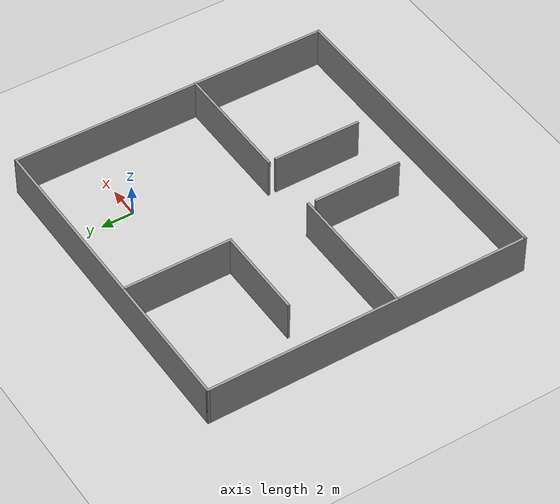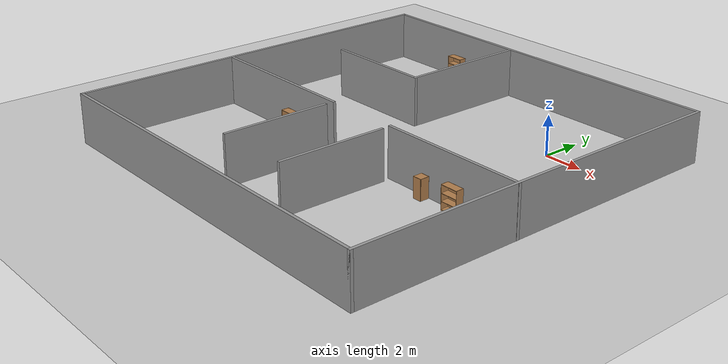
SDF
<sdf version="1.7">
 <world name="default">
  <light name="sun" type="directional">
   <pose>0 0 10 0 -0 0</pose>
   <diffuse>0.8 0.8 0.8 1</diffuse>
   <specular>0.2 0.2 0.2 1</specular>
   <attenuation>
    <range>1000</range>
    <constant>0.9</constant>
    <linear>0.01</linear>
    <quadratic>0.001</quadratic>
   </attenuation>
   <direction>-0.5 0.1 -0.9</direction>
   <spot><inner_angle>0</inner_angle><outer_angle>0</outer_angle><falloff>0</falloff></spot>
  </light>
  <model name="ground_plane">
   <static>1</static>
   <link name="link">
    <collision name="collision">
     <geometry><plane><normal>0 0 1</normal><size>100 100</size></plane></geometry>
     <surface><friction><ode><mu>100</mu><mu2>50</mu2></ode></friction></surface>
    </collision>
    <visual name="visual">
     <cast_shadows>0</cast_shadows>
     <geometry><plane><normal>0 0 1</normal><size>100 100</size></plane></geometry>
     <material>
      <script><uri>file://media/materials/scripts/gazebo.material</uri><name>Gazebo/Grey</name></script>
     </material>
    </visual>
   </link>
  </model>
  <gravity>0 0 -9.8</gravity>
  <magnetic_field>6e-06 2.3e-05 -4.2e-05</magnetic_field>
  <atmosphere type="adiabatic"/>
  <physics type="ode">
   <max_step_size>0.001</max_step_size>
   <real_time_factor>1</real_time_factor>
   <real_time_update_rate>1000</real_time_update_rate>
  </physics>
  <scene><ambient>0.4 0.4 0.4 1</ambient><background>0.7 0.7 0.7 1</background><shadows>1</shadows></scene>
  <audio><device>default</device></audio>
  <spherical_coordinates>
   <surface_model>EARTH_WGS84</surface_model>
   <latitude_deg>0</latitude_deg>
   <longitude_deg>0</longitude_deg>
   <elevation>0</elevation>
   <heading_deg>0</heading_deg>
  </spherical_coordinates>
  <model name="room">
   <pose>-5.10255 -5.46959 0 0 -0 0</pose>
   <link name="Wall_10">
    <collision name="Wall_10_Collision">
     <geometry><box><size>20 0.15 2.5</size></box></geometry>
     <pose>0 0 1.25 0 -0 0</pose>
    </collision>
    <visual name="Wall_10_Visual">
     <pose>0 0 1.25 0 -0 0</pose>
     <geometry><box><size>20 0.15 2.5</size></box></geometry>
     <material>
      <script><uri>file://media/materials/scripts/gazebo.material</uri><name>Gazebo/Grey</name></script>
      <ambient>1 1 1 1</ambient>
     </material>
     <meta><layer>0</layer></meta>
    </visual>
    <pose>-0.0061 9.925 0 0 -0 0</pose>
   </link>
   <link name="Wall_11">
    <collision name="Wall_11_Collision">
     <geometry><box><size>20 0.15 2.5</size></box></geometry>
     <pose>0 0 1.25 0 -0 0</pose>
    </collision>
    <visual name="Wall_11_Visual">
     <pose>0 0 1.25 0 -0 0</pose>
     <geometry><box><size>20 0.15 2.5</size></box></geometry>
     <material>
      <script><uri>file://media/materials/scripts/gazebo.material</uri><name>Gazebo/Grey</name></script>
      <ambient>1 1 1 1</ambient>
     </material>
     <meta><layer>0</layer></meta>
    </visual>
    <pose>9.9189 0 0 0 -0 -1.5708</pose>
   </link>
   <link name="Wall_13">
    <collision name="Wall_13_Collision">
     <geometry><box><size>20 0.15 2.5</size></box></geometry>
     <pose>0 0 1.25 0 -0 0</pose>
    </collision>
    <visual name="Wall_13_Visual">
     <pose>0 0 1.25 0 -0 0</pose>
     <geometry><box><size>20 0.15 2.5</size></box></geometry>
     <material>
      <script><uri>file://media/materials/scripts/gazebo.material</uri><name>Gazebo/Grey</name></script>
      <ambient>1 1 1 1</ambient>
     </material>
     <meta><layer>0</layer></meta>
    </visual>
    <pose>-9.9311 0 0 0 -0 -1.5708</pose>
   </link>
   <link name="Wall_14">
    <collision name="Wall_14_Collision">
     <geometry><box><size>20 0.15 2.5</size></box></geometry>
     <pose>0 0 1.25 0 -0 0</pose>
    </collision>
    <visual name="Wall_14_Visual">
     <pose>0 0 1.25 0 -0 0</pose>
     <geometry><box><size>20 0.15 2.5</size></box></geometry>
     <material>
      <script><uri>file://media/materials/scripts/gazebo.material</uri><name>Gazebo/Grey</name></script>
      <ambient>1 1 1 1</ambient>
     </material>
     <meta><layer>0</layer></meta>
    </visual>
    <pose>-0.0061 -9.925 0 0 -0 0</pose>
   </link>
   <link name="Wall_19">
    <collision name="Wall_19_Collision">
     <geometry><box><size>6.75 0.15 2.5</size></box></geometry>
     <pose>0 0 1.25 0 -0 0</pose>
    </collision>
    <visual name="Wall_19_Visual">
     <pose>0 0 1.25 0 -0 0</pose>
     <geometry><box><size>6.75 0.15 2.5</size></box></geometry>
     <material>
      <script><uri>file://media/materials/scripts/gazebo.material</uri><name>Gazebo/Grey</name></script>
      <ambient>1 1 1 1</ambient>
     </material>
     <meta><layer>0</layer></meta>
    </visual>
    <pose>-1.58567 6.61451 0 0 -0 -1.5708</pose>
   </link>
   <link name="Wall_20">
    <collision name="Wall_20_Collision">
     <geometry><box><size>5.75 0.15 2.5</size></box></geometry>
     <pose>0 0 1.25 0 -0 0</pose>
    </collision>
    <visual name="Wall_20_Visual">
     <pose>0 0 1.25 0 -0 0</pose>
     <geometry><box><size>5.75 0.15 2.5</size></box></geometry>
     <material>
      <script><uri>file://media/materials/scripts/gazebo.material</uri><name>Gazebo/Grey</name></script>
      <ambient>1 1 1 1</ambient>
     </material>
     <meta><layer>0</layer></meta>
    </visual>
    <pose>-4.38567 3.31451 0 0 -0 3.14159</pose>
   </link>
   <link name="Wall_23">
    <collision name="Wall_23_Collision">
     <geometry><box><size>8.5 0.15 2.5</size></box></geometry>
     <pose>0 0 1.25 0 -0 0</pose>
    </collision>
    <visual name="Wall_23_Visual">
     <pose>0 0 1.25 0 -0 0</pose>
     <geometry><box><size>8.5 0.15 2.5</size></box></geometry>
     <material>
      <script><uri>file://media/materials/scripts/gazebo.material</uri><name>Gazebo/Grey</name></script>
      <ambient>1 1 1 1</ambient>
     </material>
     <meta><layer>0</layer></meta>
    </visual>
    <pose>-5.7472 -1.67681 0 0 -0 -4.5e-05</pose>
   </link>
   <link name="Wall_25">
    <collision name="Wall_25_Collision">
     <geometry><box><size>5.5 0.15 2.5</size></box></geometry>
     <pose>0 0 1.25 0 -0 0</pose>
    </collision>
    <visual name="Wall_25_Visual">
     <pose>0 0 1.25 0 -0 0</pose>
     <geometry><box><size>5.5 0.15 2.5</size></box></geometry>
     <material>
      <script><uri>file://media/materials/scripts/gazebo.material</uri><name>Gazebo/Grey</name></script>
      <ambient>1 1 1 1</ambient>
     </material>
     <meta><layer>0</layer></meta>
    </visual>
    <pose>-1.5721 -4.852 0 0 -0 -1.5708</pose>
   </link>
   <link name="Wall_27">
    <collision name="Wall_27_Collision">
     <geometry><box><size>7.75 0.15 2.5</size></box></geometry>
     <pose>0 0 1.25 0 -0 0</pose>
    </collision>
    <visual name="Wall_27_Visual">
     <pose>0 0 1.25 0 -0 0</pose>
     <geometry><box><size>7.75 0.15 2.5</size></box></geometry>
     <material>
      <script><uri>file://media/materials/scripts/gazebo.material</uri><name>Gazebo/Grey</name></script>
      <ambient>1 1 1 1</ambient>
     </material>
     <meta><layer>0</layer></meta>
    </visual>
    <pose>6.1311 -1.61402 0 0 -0 3.14159</pose>
   </link>
   <link name="Wall_28">
    <collision name="Wall_28_Collision">
     <geometry><box><size>5.5 0.15 2.5</size></box></geometry>
     <pose>0 0 1.25 0 -0 0</pose>
    </collision>
    <visual name="Wall_28_Visual">
     <pose>0 0 1.25 0 -0 0</pose>
     <geometry><box><size>5.5 0.15 2.5</size></box></geometry>
     <material>
      <script><uri>file://media/materials/scripts/gazebo.material</uri><name>Gazebo/Grey</name></script>
      <ambient>1 1 1 1</ambient>
     </material>
     <meta><layer>0</layer></meta>
    </visual>
    <pose>2.3311 -4.78902 0 0 -0 -1.5708</pose>
   </link>
   <static>1</static>
  </model>
  <model name="cabinet">
   <static>1</static>
   <link name="cabinet_bottom_plate">
    <inertial>
     <pose>0 0 -1 0 -0 0</pose>
     <inertia><ixx>2.05</ixx><ixy>0</ixy><ixz>0</ixz><iyy>2.05</iyy><iyz>0</iyz><izz>2.05</izz></inertia>
     <mass>25</mass>
    </inertial>
    <collision name="cabinet_bottom_plate_geom">
     <pose>0 0 0.01 0 -0 0</pose>
     <geometry><box><size>0.45 0.45 0.02</size></box></geometry>
    </collision>
    <visual name="cabinet_bottom_plate_geom_visual">
     <pose>0 0 0.01 0 -0 0</pose>
     <geometry><box><size>0.45 0.45 0.02</size></box></geometry>
     <material>
      <script><uri>file://media/materials/scripts/gazebo.material</uri><name>Gazebo/Wood</name></script>
     </material>
    </visual>
    <collision name="cabinet_bottom_plate_geom_cabinet_back_plate">
     <pose>0.235 0 0.51 0 -0 0</pose>
     <geometry><box><size>0.02 0.45 1.02</size></box></geometry>
    </collision>
    <visual name="cabinet_bottom_plate_geom_cabinet_back_plate_visual">
     <pose>0.235 0 0.51 0 -0 0</pose>
     <geometry><box><size>0.02 0.45 1.02</size></box></geometry>
     <material>
      <script><uri>file://media/materials/scripts/gazebo.material</uri><name>Gazebo/Wood</name></script>
     </material>
    </visual>
    <collision name="cabinet_bottom_plate_geom_cabinet_left_plate">
     <pose>0 0.235 0.51 0 -0 0</pose>
     <geometry><box><size>0.45 0.02 1.02</size></box></geometry>
    </collision>
    <visual name="cabinet_bottom_plate_geom_cabinet_left_plate_visual">
     <pose>0 0.235 0.51 0 -0 0</pose>
     <geometry><box><size>0.45 0.02 1.02</size></box></geometry>
     <material>
      <script><uri>file://media/materials/scripts/gazebo.material</uri><name>Gazebo/Wood</name></script>
     </material>
    </visual>
    <collision name="cabinet_bottom_plate_geom_cabinet_middle_plate">
     <pose>0 0 0.51 0 -0 0</pose>
     <geometry><box><size>0.45 0.45 0.02</size></box></geometry>
    </collision>
    <visual name="cabinet_bottom_plate_geom_cabinet_middle_plate_visual">
     <pose>0 0 0.51 0 -0 0</pose>
     <geometry><box><size>0.45 0.45 0.02</size></box></geometry>
     <material>
      <script><uri>file://media/materials/scripts/gazebo.material</uri><name>Gazebo/Wood</name></script>
     </material>
    </visual>
    <collision name="cabinet_bottom_plate_geom_cabinet_right_plate">
     <pose>0 -0.235 0.51 0 -0 0</pose>
     <geometry><box><size>0.45 0.02 1.02</size></box></geometry>
    </collision>
    <visual name="cabinet_bottom_plate_geom_cabinet_right_plate_visual">
     <pose>0 -0.235 0.51 0 -0 0</pose>
     <geometry><box><size>0.45 0.02 1.02</size></box></geometry>
     <material>
      <script><uri>file://media/materials/scripts/gazebo.material</uri><name>Gazebo/Wood</name></script>
     </material>
    </visual>
    <collision name="cabinet_bottom_plate_geom_cabinet_top_plate">
     <pose>0 0 1.01 0 -0 0</pose>
     <geometry><box><size>0.45 0.45 0.02</size></box></geometry>
    </collision>
    <visual name="cabinet_bottom_plate_geom_cabinet_top_plate_visual">
     <pose>0 0 1.01 0 -0 0</pose>
     <geometry><box><size>0.45 0.45 0.02</size></box></geometry>
     <material>
      <script><uri>file://media/materials/scripts/gazebo.material</uri><name>Gazebo/Wood</name></script>
     </material>
    </visual>
   </link>
   <pose>-9.2819 4.12533 0 0 -0 0</pose>
  </model>
  <model name="cabinet_0">
   <static>1</static>
   <link name="cabinet_bottom_plate">
    <inertial>
     <pose>0 0 -1 0 -0 0</pose>
     <inertia><ixx>2.05</ixx><ixy>0</ixy><ixz>0</ixz><iyy>2.05</iyy><iyz>0</iyz><izz>2.05</izz></inertia>
     <mass>25</mass>
    </inertial>
    <collision name="cabinet_bottom_plate_geom">
     <pose>0 0 0.01 0 -0 0</pose>
     <geometry><box><size>0.45 0.45 0.02</size></box></geometry>
    </collision>
    <visual name="cabinet_bottom_plate_geom_visual">
     <pose>0 0 0.01 0 -0 0</pose>
     <geometry><box><size>0.45 0.45 0.02</size></box></geometry>
     <material>
      <script><uri>file://media/materials/scripts/gazebo.material</uri><name>Gazebo/Wood</name></script>
     </material>
    </visual>
    <collision name="cabinet_bottom_plate_geom_cabinet_back_plate">
     <pose>0.235 0 0.51 0 -0 0</pose>
     <geometry><box><size>0.02 0.45 1.02</size></box></geometry>
    </collision>
    <visual name="cabinet_bottom_plate_geom_cabinet_back_plate_visual">
     <pose>0.235 0 0.51 0 -0 0</pose>
     <geometry><box><size>0.02 0.45 1.02</size></box></geometry>
     <material>
      <script><uri>file://media/materials/scripts/gazebo.material</uri><name>Gazebo/Wood</name></script>
     </material>
    </visual>
    <collision name="cabinet_bottom_plate_geom_cabinet_left_plate">
     <pose>0 0.235 0.51 0 -0 0</pose>
     <geometry><box><size>0.45 0.02 1.02</size></box></geometry>
    </collision>
    <visual name="cabinet_bottom_plate_geom_cabinet_left_plate_visual">
     <pose>0 0.235 0.51 0 -0 0</pose>
     <geometry><box><size>0.45 0.02 1.02</size></box></geometry>
     <material>
      <script><uri>file://media/materials/scripts/gazebo.material</uri><name>Gazebo/Wood</name></script>
     </material>
    </visual>
    <collision name="cabinet_bottom_plate_geom_cabinet_middle_plate">
     <pose>0 0 0.51 0 -0 0</pose>
     <geometry><box><size>0.45 0.45 0.02</size></box></geometry>
    </collision>
    <visual name="cabinet_bottom_plate_geom_cabinet_middle_plate_visual">
     <pose>0 0 0.51 0 -0 0</pose>
     <geometry><box><size>0.45 0.45 0.02</size></box></geometry>
     <material>
      <script><uri>file://media/materials/scripts/gazebo.material</uri><name>Gazebo/Wood</name></script>
     </material>
    </visual>
    <collision name="cabinet_bottom_plate_geom_cabinet_right_plate">
     <pose>0 -0.235 0.51 0 -0 0</pose>
     <geometry><box><size>0.45 0.02 1.02</size></box></geometry>
    </collision>
    <visual name="cabinet_bottom_plate_geom_cabinet_right_plate_visual">
     <pose>0 -0.235 0.51 0 -0 0</pose>
     <geometry><box><size>0.45 0.02 1.02</size></box></geometry>
     <material>
      <script><uri>file://media/materials/scripts/gazebo.material</uri><name>Gazebo/Wood</name></script>
     </material>
    </visual>
    <collision name="cabinet_bottom_plate_geom_cabinet_top_plate">
     <pose>0 0 1.01 0 -0 0</pose>
     <geometry><box><size>0.45 0.45 0.02</size></box></geometry>
    </collision>
    <visual name="cabinet_bottom_plate_geom_cabinet_top_plate_visual">
     <pose>0 0 1.01 0 -0 0</pose>
     <geometry><box><size>0.45 0.45 0.02</size></box></geometry>
     <material>
      <script><uri>file://media/materials/scripts/gazebo.material</uri><name>Gazebo/Wood</name></script>
     </material>
    </visual>
   </link>
   <pose>-8.24493 -7.48667 0 0 -0 0</pose>
  </model>
  <model name="cabinet_1">
   <static>1</static>
   <link name="cabinet_bottom_plate">
    <inertial>
     <pose>0 0 -1 0 -0 0</pose>
     <inertia><ixx>2.05</ixx><ixy>0</ixy><ixz>0</ixz><iyy>2.05</iyy><iyz>0</iyz><izz>2.05</izz></inertia>
     <mass>25</mass>
    </inertial>
    <collision name="cabinet_bottom_plate_geom">
     <pose>0 0 0.01 0 -0 0</pose>
     <geometry><box><size>0.45 0.45 0.02</size></box></geometry>
    </collision>
    <visual name="cabinet_bottom_plate_geom_visual">
     <pose>0 0 0.01 0 -0 0</pose>
     <geometry><box><size>0.45 0.45 0.02</size></box></geometry>
     <material>
      <script><uri>file://media/materials/scripts/gazebo.material</uri><name>Gazebo/Wood</name></script>
     </material>
    </visual>
    <collision name="cabinet_bottom_plate_geom_cabinet_back_plate">
     <pose>0.235 0 0.51 0 -0 0</pose>
     <geometry><box><size>0.02 0.45 1.02</size></box></geometry>
    </collision>
    <visual name="cabinet_bottom_plate_geom_cabinet_back_plate_visual">
     <pose>0.235 0 0.51 0 -0 0</pose>
     <geometry><box><size>0.02 0.45 1.02</size></box></geometry>
     <material>
      <script><uri>file://media/materials/scripts/gazebo.material</uri><name>Gazebo/Wood</name></script>
     </material>
    </visual>
    <collision name="cabinet_bottom_plate_geom_cabinet_left_plate">
     <pose>0 0.235 0.51 0 -0 0</pose>
     <geometry><box><size>0.45 0.02 1.02</size></box></geometry>
    </collision>
    <visual name="cabinet_bottom_plate_geom_cabinet_left_plate_visual">
     <pose>0 0.235 0.51 0 -0 0</pose>
     <geometry><box><size>0.45 0.02 1.02</size></box></geometry>
     <material>
      <script><uri>file://media/materials/scripts/gazebo.material</uri><name>Gazebo/Wood</name></script>
     </material>
    </visual>
    <collision name="cabinet_bottom_plate_geom_cabinet_middle_plate">
     <pose>0 0 0.51 0 -0 0</pose>
     <geometry><box><size>0.45 0.45 0.02</size></box></geometry>
    </collision>
    <visual name="cabinet_bottom_plate_geom_cabinet_middle_plate_visual">
     <pose>0 0 0.51 0 -0 0</pose>
     <geometry><box><size>0.45 0.45 0.02</size></box></geometry>
     <material>
      <script><uri>file://media/materials/scripts/gazebo.material</uri><name>Gazebo/Wood</name></script>
     </material>
    </visual>
    <collision name="cabinet_bottom_plate_geom_cabinet_right_plate">
     <pose>0 -0.235 0.51 0 -0 0</pose>
     <geometry><box><size>0.45 0.02 1.02</size></box></geometry>
    </collision>
    <visual name="cabinet_bottom_plate_geom_cabinet_right_plate_visual">
     <pose>0 -0.235 0.51 0 -0 0</pose>
     <geometry><box><size>0.45 0.02 1.02</size></box></geometry>
     <material>
      <script><uri>file://media/materials/scripts/gazebo.material</uri><name>Gazebo/Wood</name></script>
     </material>
    </visual>
    <collision name="cabinet_bottom_plate_geom_cabinet_top_plate">
     <pose>0 0 1.01 0 -0 0</pose>
     <geometry><box><size>0.45 0.45 0.02</size></box></geometry>
    </collision>
    <visual name="cabinet_bottom_plate_geom_cabinet_top_plate_visual">
     <pose>0 0 1.01 0 -0 0</pose>
     <geometry><box><size>0.45 0.45 0.02</size></box></geometry>
     <material>
      <script><uri>file://media/materials/scripts/gazebo.material</uri><name>Gazebo/Wood</name></script>
     </material>
    </visual>
   </link>
   <pose>-0.40838 -7.40664 0 0 -0 0</pose>
  </model>
  <model name="bookshelf">
   <static>1</static>
   <link name="link">
    <inertial><mass>1</mass></inertial>
    <collision name="back">
     <pose>0 0.005 0.6 0 -0 0</pose>
     <geometry><box><size>0.9 0.01 1.2</size></box></geometry>
    </collision>
    <visual name="visual1">
     <pose>0 0.005 0.6 0 -0 0</pose>
     <geometry><box><size>0.9 0.01 1.2</size></box></geometry>
     <material>
      <script><uri>file://media/materials/scripts/gazebo.material</uri><name>Gazebo/Wood</name></script>
     </material>
    </visual>
    <collision name="left_side">
     <pose>0.45 -0.195 0.6 0 -0 0</pose>
     <geometry><box><size>0.02 0.4 1.2</size></box></geometry>
    </collision>
    <visual name="visual2">
     <pose>0.45 -0.195 0.6 0 -0 0</pose>
     <geometry><box><size>0.02 0.4 1.2</size></box></geometry>
     <material>
      <script><uri>file://media/materials/scripts/gazebo.material</uri><name>Gazebo/Wood</name></script>
     </material>
    </visual>
    <collision name="right_side">
     <pose>-0.45 -0.195 0.6 0 -0 0</pose>
     <geometry><box><size>0.02 0.4 1.2</size></box></geometry>
    </collision>
    <visual name="visual3">
     <pose>-0.45 -0.195 0.6 0 -0 0</pose>
     <geometry><box><size>0.02 0.4 1.2</size></box></geometry>
     <material>
      <script><uri>file://media/materials/scripts/gazebo.material</uri><name>Gazebo/Wood</name></script>
     </material>
    </visual>
    <collision name="bottom">
     <pose>0 -0.195 0.03 0 -0 0</pose>
     <geometry><box><size>0.88 0.4 0.06</size></box></geometry>
    </collision>
    <visual name="visual4">
     <pose>0 -0.195 0.03 0 -0 0</pose>
     <geometry><box><size>0.88 0.4 0.06</size></box></geometry>
     <material>
      <script><uri>file://media/materials/scripts/gazebo.material</uri><name>Gazebo/Wood</name></script>
     </material>
    </visual>
    <collision name="top">
     <pose>0 -0.195 1.19 0 -0 0</pose>
     <geometry><box><size>0.88 0.4 0.02</size></box></geometry>
    </collision>
    <visual name="visual5">
     <pose>0 -0.195 1.19 0 -0 0</pose>
     <geometry><box><size>0.88 0.4 0.02</size></box></geometry>
     <material>
      <script><uri>file://media/materials/scripts/gazebo.material</uri><name>Gazebo/Wood</name></script>
     </material>
    </visual>
    <collision name="low_shelf">
     <pose>0 -0.195 0.43 0 -0 0</pose>
     <geometry><box><size>0.88 0.4 0.02</size></box></geometry>
    </collision>
    <visual name="visual6">
     <pose>0 -0.195 0.43 0 -0 0</pose>
     <geometry><box><size>0.88 0.4 0.02</size></box></geometry>
     <material>
      <script><uri>file://media/materials/scripts/gazebo.material</uri><name>Gazebo/Wood</name></script>
     </material>
    </visual>
    <collision name="high_shelf">
     <pose>0 -0.195 0.8 0 -0 0</pose>
     <geometry><box><size>0.88 0.4 0.02</size></box></geometry>
    </collision>
    <visual name="visual7">
     <pose>0 -0.195 0.8 0 -0 0</pose>
     <geometry><box><size>0.88 0.4 0.02</size></box></geometry>
     <material>
      <script><uri>file://media/materials/scripts/gazebo.material</uri><name>Gazebo/Wood</name></script>
     </material>
    </visual>
   </link>
   <pose>-10.3592 4.36632 0 0 -0 0</pose>
  </model>
  <model name="bookshelf_0">
   <static>1</static>
   <link name="link">
    <inertial><mass>1</mass></inertial>
    <collision name="back">
     <pose>0 0.005 0.6 0 -0 0</pose>
     <geometry><box><size>0.9 0.01 1.2</size></box></geometry>
    </collision>
    <visual name="visual1">
     <pose>0 0.005 0.6 0 -0 0</pose>
     <geometry><box><size>0.9 0.01 1.2</size></box></geometry>
     <material>
      <script><uri>file://media/materials/scripts/gazebo.material</uri><name>Gazebo/Wood</name></script>
     </material>
    </visual>
    <collision name="left_side">
     <pose>0.45 -0.195 0.6 0 -0 0</pose>
     <geometry><box><size>0.02 0.4 1.2</size></box></geometry>
    </collision>
    <visual name="visual2">
     <pose>0.45 -0.195 0.6 0 -0 0</pose>
     <geometry><box><size>0.02 0.4 1.2</size></box></geometry>
     <material>
      <script><uri>file://media/materials/scripts/gazebo.material</uri><name>Gazebo/Wood</name></script>
     </material>
    </visual>
    <collision name="right_side">
     <pose>-0.45 -0.195 0.6 0 -0 0</pose>
     <geometry><box><size>0.02 0.4 1.2</size></box></geometry>
    </collision>
    <visual name="visual3">
     <pose>-0.45 -0.195 0.6 0 -0 0</pose>
     <geometry><box><size>0.02 0.4 1.2</size></box></geometry>
     <material>
      <script><uri>file://media/materials/scripts/gazebo.material</uri><name>Gazebo/Wood</name></script>
     </material>
    </visual>
    <collision name="bottom">
     <pose>0 -0.195 0.03 0 -0 0</pose>
     <geometry><box><size>0.88 0.4 0.06</size></box></geometry>
    </collision>
    <visual name="visual4">
     <pose>0 -0.195 0.03 0 -0 0</pose>
     <geometry><box><size>0.88 0.4 0.06</size></box></geometry>
     <material>
      <script><uri>file://media/materials/scripts/gazebo.material</uri><name>Gazebo/Wood</name></script>
     </material>
    </visual>
    <collision name="top">
     <pose>0 -0.195 1.19 0 -0 0</pose>
     <geometry><box><size>0.88 0.4 0.02</size></box></geometry>
    </collision>
    <visual name="visual5">
     <pose>0 -0.195 1.19 0 -0 0</pose>
     <geometry><box><size>0.88 0.4 0.02</size></box></geometry>
     <material>
      <script><uri>file://media/materials/scripts/gazebo.material</uri><name>Gazebo/Wood</name></script>
     </material>
    </visual>
    <collision name="low_shelf">
     <pose>0 -0.195 0.43 0 -0 0</pose>
     <geometry><box><size>0.88 0.4 0.02</size></box></geometry>
    </collision>
    <visual name="visual6">
     <pose>0 -0.195 0.43 0 -0 0</pose>
     <geometry><box><size>0.88 0.4 0.02</size></box></geometry>
     <material>
      <script><uri>file://media/materials/scripts/gazebo.material</uri><name>Gazebo/Wood</name></script>
     </material>
    </visual>
    <collision name="high_shelf">
     <pose>0 -0.195 0.8 0 -0 0</pose>
     <geometry><box><size>0.88 0.4 0.02</size></box></geometry>
    </collision>
    <visual name="visual7">
     <pose>0 -0.195 0.8 0 -0 0</pose>
     <geometry><box><size>0.88 0.4 0.02</size></box></geometry>
     <material>
      <script><uri>file://media/materials/scripts/gazebo.material</uri><name>Gazebo/Wood</name></script>
     </material>
    </visual>
   </link>
   <pose>-9.64799 -7.24948 0 0 -0 0</pose>
  </model>
  <model name="bookshelf_1">
   <static>1</static>
   <link name="link">
    <inertial><mass>1</mass></inertial>
    <collision name="back">
     <pose>0 0.005 0.6 0 -0 0</pose>
     <geometry><box><size>0.9 0.01 1.2</size></box></geometry>
    </collision>
    <visual name="visual1">
     <pose>0 0.005 0.6 0 -0 0</pose>
     <geometry><box><size>0.9 0.01 1.2</size></box></geometry>
     <material>
      <script><uri>file://media/materials/scripts/gazebo.material</uri><name>Gazebo/Wood</name></script>
     </material>
    </visual>
    <collision name="left_side">
     <pose>0.45 -0.195 0.6 0 -0 0</pose>
     <geometry><box><size>0.02 0.4 1.2</size></box></geometry>
    </collision>
    <visual name="visual2">
     <pose>0.45 -0.195 0.6 0 -0 0</pose>
     <geometry><box><size>0.02 0.4 1.2</size></box></geometry>
     <material>
      <script><uri>file://media/materials/scripts/gazebo.material</uri><name>Gazebo/Wood</name></script>
     </material>
    </visual>
    <collision name="right_side">
     <pose>-0.45 -0.195 0.6 0 -0 0</pose>
     <geometry><box><size>0.02 0.4 1.2</size></box></geometry>
    </collision>
    <visual name="visual3">
     <pose>-0.45 -0.195 0.6 0 -0 0</pose>
     <geometry><box><size>0.02 0.4 1.2</size></box></geometry>
     <material>
      <script><uri>file://media/materials/scripts/gazebo.material</uri><name>Gazebo/Wood</name></script>
     </material>
    </visual>
    <collision name="bottom">
     <pose>0 -0.195 0.03 0 -0 0</pose>
     <geometry><box><size>0.88 0.4 0.06</size></box></geometry>
    </collision>
    <visual name="visual4">
     <pose>0 -0.195 0.03 0 -0 0</pose>
     <geometry><box><size>0.88 0.4 0.06</size></box></geometry>
     <material>
      <script><uri>file://media/materials/scripts/gazebo.material</uri><name>Gazebo/Wood</name></script>
     </material>
    </visual>
    <collision name="top">
     <pose>0 -0.195 1.19 0 -0 0</pose>
     <geometry><box><size>0.88 0.4 0.02</size></box></geometry>
    </collision>
    <visual name="visual5">
     <pose>0 -0.195 1.19 0 -0 0</pose>
     <geometry><box><size>0.88 0.4 0.02</size></box></geometry>
     <material>
      <script><uri>file://media/materials/scripts/gazebo.material</uri><name>Gazebo/Wood</name></script>
     </material>
    </visual>
    <collision name="low_shelf">
     <pose>0 -0.195 0.43 0 -0 0</pose>
     <geometry><box><size>0.88 0.4 0.02</size></box></geometry>
    </collision>
    <visual name="visual6">
     <pose>0 -0.195 0.43 0 -0 0</pose>
     <geometry><box><size>0.88 0.4 0.02</size></box></geometry>
     <material>
      <script><uri>file://media/materials/scripts/gazebo.material</uri><name>Gazebo/Wood</name></script>
     </material>
    </visual>
    <collision name="high_shelf">
     <pose>0 -0.195 0.8 0 -0 0</pose>
     <geometry><box><size>0.88 0.4 0.02</size></box></geometry>
    </collision>
    <visual name="visual7">
     <pose>0 -0.195 0.8 0 -0 0</pose>
     <geometry><box><size>0.88 0.4 0.02</size></box></geometry>
     <material>
      <script><uri>file://media/materials/scripts/gazebo.material</uri><name>Gazebo/Wood</name></script>
     </material>
    </visual>
   </link>
   <pose>1.44434 -7.17142 0 0 -0 0</pose>
  </model>
 </world>
</sdf>
